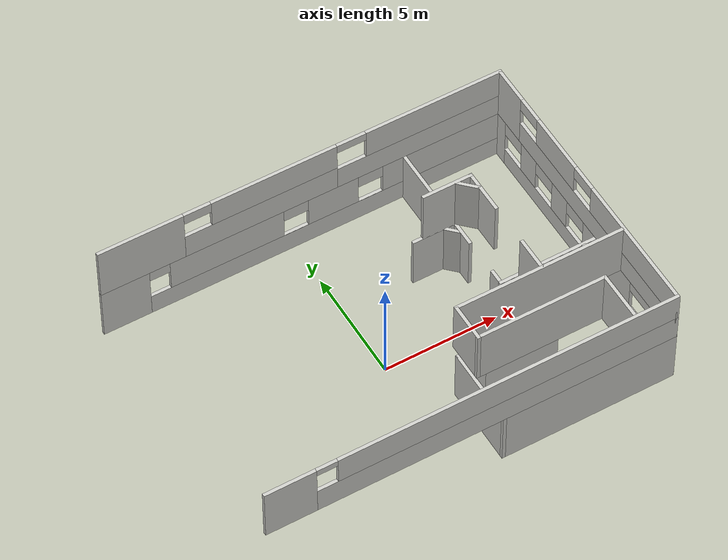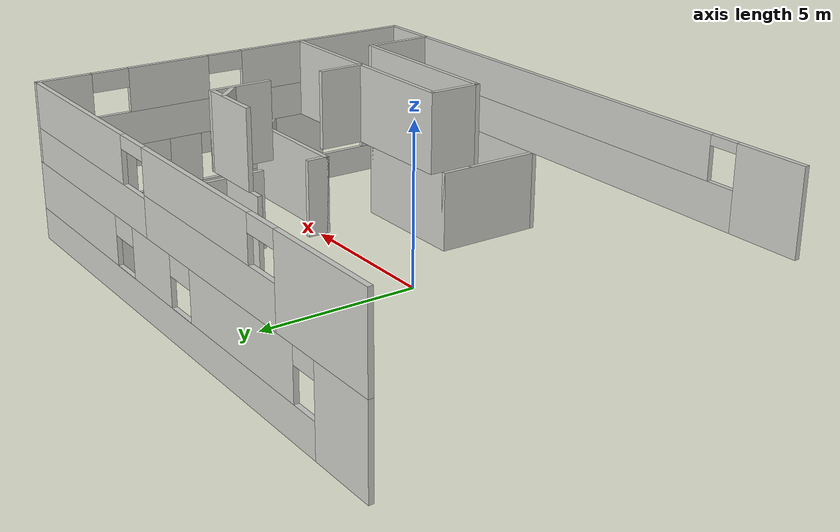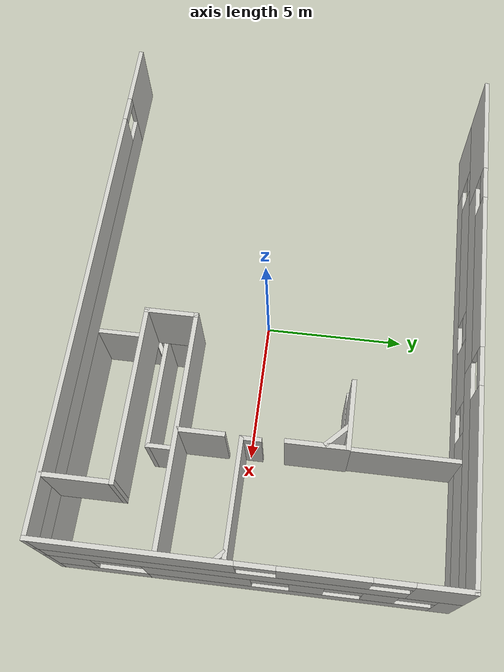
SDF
<sdf version="1.6">
 <model name="Indoor_Scenario1">
  <pose>0.463179 0.653592 0 0 -0 0</pose>
  <link name="Wall_19">
   <collision name="Wall_19_Collision">
    <geometry><box><size>0.75 0.15 2.5</size></box></geometry>
    <pose>0 0 1.25 0 -0 0</pose>
   </collision>
   <visual name="Wall_19_Visual">
    <pose>0 0 1.25 0 -0 0</pose>
    <geometry><box><size>0.75 0.15 2.5</size></box></geometry>
    <material>
     <script><uri>file://media/materials/scripts/gazebo.material</uri><name>Gazebo/CeilingTiled</name></script>
     <ambient>1 1 1 1</ambient>
    </material>
    <meta><layer>0</layer></meta>
   </visual>
   <pose>1.67467 -4.10793 0 0 -0 -2.61799</pose>
  </link>
  <link name="Wall_2">
   <pose>-0 6.425 0 0 -0 0</pose>
   <visual name="Wall_2_Visual_0">
    <pose>-7.94017 0 1.25 0 -0 0</pose>
    <geometry><box><size>2.11966 0.15 2.5</size></box></geometry>
    <material>
     <script><uri>file://media/materials/scripts/gazebo.material</uri><name>Gazebo/CeilingTiled</name></script>
     <ambient>0.647059 0.505882 0.309804 1</ambient>
    </material>
    <meta><layer>0</layer></meta>
   </visual>
   <collision name="Wall_2_Collision_0">
    <geometry><box><size>2.11966 0.15 2.5</size></box></geometry>
    <pose>-7.94017 0 1.25 0 -0 0</pose>
   </collision>
   <visual name="Wall_2_Visual_1">
    <pose>1.05983 0 0.5 0 -0 0</pose>
    <geometry><box><size>15.8803 0.15 1</size></box></geometry>
    <material>
     <script><uri>file://media/materials/scripts/gazebo.material</uri><name>Gazebo/CeilingTiled</name></script>
     <ambient>0.647059 0.505882 0.309804 1</ambient>
    </material>
    <meta><layer>0</layer></meta>
   </visual>
   <collision name="Wall_2_Collision_1">
    <geometry><box><size>15.8803 0.15 1</size></box></geometry>
    <pose>1.05983 0 0.5 0 -0 0</pose>
   </collision>
   <visual name="Wall_2_Visual_2">
    <pose>-3.45191 0 1.75 0 -0 0</pose>
    <geometry><box><size>5.05687 0.15 1.5</size></box></geometry>
    <material>
     <script><uri>file://media/materials/scripts/gazebo.material</uri><name>Gazebo/CeilingTiled</name></script>
     <ambient>0.647059 0.505882 0.309804 1</ambient>
    </material>
    <meta><layer>0</layer></meta>
   </visual>
   <collision name="Wall_2_Collision_2">
    <geometry><box><size>5.05687 0.15 1.5</size></box></geometry>
    <pose>-3.45191 0 1.75 0 -0 0</pose>
   </collision>
   <visual name="Wall_2_Visual_3">
    <pose>1.30899 0 1.75 0 -0 0</pose>
    <geometry><box><size>2.26492 0.15 1.5</size></box></geometry>
    <material>
     <script><uri>file://media/materials/scripts/gazebo.material</uri><name>Gazebo/CeilingTiled</name></script>
     <ambient>0.647059 0.505882 0.309804 1</ambient>
    </material>
    <meta><layer>0</layer></meta>
   </visual>
   <collision name="Wall_2_Collision_3">
    <geometry><box><size>2.26492 0.15 1.5</size></box></geometry>
    <pose>1.30899 0 1.75 0 -0 0</pose>
   </collision>
   <visual name="Wall_2_Visual_4">
    <pose>6.27072 0 1.75 0 -0 0</pose>
    <geometry><box><size>5.45855 0.15 1.5</size></box></geometry>
    <material>
     <script><uri>file://media/materials/scripts/gazebo.material</uri><name>Gazebo/CeilingTiled</name></script>
     <ambient>0.647059 0.505882 0.309804 1</ambient>
    </material>
    <meta><layer>0</layer></meta>
   </visual>
   <collision name="Wall_2_Collision_4">
    <geometry><box><size>5.45855 0.15 1.5</size></box></geometry>
    <pose>6.27072 0 1.75 0 -0 0</pose>
   </collision>
   <visual name="Wall_2_Visual_5">
    <pose>-0.373475 0 1 0 -0 0</pose>
    <geometry><box><size>1.1 0.15 0.01</size></box></geometry>
    <material>
     <script><uri>file://media/materials/scripts/gazebo.material</uri><name>Gazebo/CeilingTiled</name></script>
     <ambient>0.647059 0.505882 0.309804 1</ambient>
    </material>
    <meta><layer>0</layer></meta>
   </visual>
   <collision name="Wall_2_Collision_5">
    <geometry><box><size>1.1 0.15 0.01</size></box></geometry>
    <pose>-0.373475 0 1 0 -0 0</pose>
   </collision>
   <visual name="Wall_2_Visual_6">
    <pose>2.99145 0 1 0 -0 0</pose>
    <geometry><box><size>1.1 0.15 0.01</size></box></geometry>
    <material>
     <script><uri>file://media/materials/scripts/gazebo.material</uri><name>Gazebo/CeilingTiled</name></script>
     <ambient>0.647059 0.505882 0.309804 1</ambient>
    </material>
    <meta><layer>0</layer></meta>
   </visual>
   <collision name="Wall_2_Collision_6">
    <geometry><box><size>1.1 0.15 0.01</size></box></geometry>
    <pose>2.99145 0 1 0 -0 0</pose>
   </collision>
   <visual name="Wall_2_Visual_7">
    <pose>-0.373475 0 2.2 0 -0 0</pose>
    <geometry><box><size>1.1 0.15 0.6</size></box></geometry>
    <material>
     <script><uri>file://media/materials/scripts/gazebo.material</uri><name>Gazebo/CeilingTiled</name></script>
     <ambient>0.647059 0.505882 0.309804 1</ambient>
    </material>
    <meta><layer>0</layer></meta>
   </visual>
   <collision name="Wall_2_Collision_7">
    <geometry><box><size>1.1 0.15 0.6</size></box></geometry>
    <pose>-0.373475 0 2.2 0 -0 0</pose>
   </collision>
   <visual name="Wall_2_Visual_8">
    <pose>2.99145 0 2.2 0 -0 0</pose>
    <geometry><box><size>1.1 0.15 0.6</size></box></geometry>
    <material>
     <script><uri>file://media/materials/scripts/gazebo.material</uri><name>Gazebo/CeilingTiled</name></script>
     <ambient>0.647059 0.505882 0.309804 1</ambient>
    </material>
    <meta><layer>0</layer></meta>
   </visual>
   <collision name="Wall_2_Collision_8">
    <geometry><box><size>1.1 0.15 0.6</size></box></geometry>
    <pose>2.99145 0 2.2 0 -0 0</pose>
   </collision>
   <visual name="Wall_2_Visual_9">
    <pose>-6.43034 0 2.25 0 -0 0</pose>
    <geometry><box><size>0.9 0.15 0.5</size></box></geometry>
    <material>
     <script><uri>file://media/materials/scripts/gazebo.material</uri><name>Gazebo/CeilingTiled</name></script>
     <ambient>0.647059 0.505882 0.309804 1</ambient>
    </material>
    <meta><layer>0</layer></meta>
   </visual>
   <collision name="Wall_2_Collision_9">
    <geometry><box><size>0.9 0.15 0.5</size></box></geometry>
    <pose>-6.43034 0 2.25 0 -0 0</pose>
   </collision>
  </link>
  <link name="Wall_3">
   <pose>8.925 -0 0 0 -0 -1.5708</pose>
   <visual name="Wall_3_Visual_0">
    <pose>-6.13698 0 1.25 0 -0 0</pose>
    <geometry><box><size>0.726032 0.15 2.5</size></box></geometry>
    <material>
     <script><uri>file://media/materials/scripts/gazebo.material</uri><name>Gazebo/CeilingTiled</name></script>
     <ambient>0.647059 0.505882 0.309804 1</ambient>
    </material>
    <meta><layer>0</layer></meta>
   </visual>
   <collision name="Wall_3_Collision_0">
    <geometry><box><size>0.726032 0.15 2.5</size></box></geometry>
    <pose>-6.13698 0 1.25 0 -0 0</pose>
   </collision>
   <visual name="Wall_3_Visual_1">
    <pose>-1.17837 0 0.45 0 -0 0</pose>
    <geometry><box><size>9.1912 0.15 0.9</size></box></geometry>
    <material>
     <script><uri>file://media/materials/scripts/gazebo.material</uri><name>Gazebo/CeilingTiled</name></script>
     <ambient>0.647059 0.505882 0.309804 1</ambient>
    </material>
    <meta><layer>0</layer></meta>
   </visual>
   <collision name="Wall_3_Collision_1">
    <geometry><box><size>9.1912 0.15 0.9</size></box></geometry>
    <pose>-1.17837 0 0.45 0 -0 0</pose>
   </collision>
   <visual name="Wall_3_Visual_2">
    <pose>4.95862 0 0.45 0 -0 0</pose>
    <geometry><box><size>3.08277 0.15 0.9</size></box></geometry>
    <material>
     <script><uri>file://media/materials/scripts/gazebo.material</uri><name>Gazebo/CeilingTiled</name></script>
     <ambient>0.647059 0.505882 0.309804 1</ambient>
    </material>
    <meta><layer>0</layer></meta>
   </visual>
   <collision name="Wall_3_Collision_2">
    <geometry><box><size>3.08277 0.15 0.9</size></box></geometry>
    <pose>4.95862 0 0.45 0 -0 0</pose>
   </collision>
   <visual name="Wall_3_Visual_3">
    <pose>5.75862 0 1.7 0 -0 0</pose>
    <geometry><box><size>1.48277 0.15 1.6</size></box></geometry>
    <material>
     <script><uri>file://media/materials/scripts/gazebo.material</uri><name>Gazebo/CeilingTiled</name></script>
     <ambient>0.647059 0.505882 0.309804 1</ambient>
    </material>
    <meta><layer>0</layer></meta>
   </visual>
   <collision name="Wall_3_Collision_3">
    <geometry><box><size>1.48277 0.15 1.6</size></box></geometry>
    <pose>5.75862 0 1.7 0 -0 0</pose>
   </collision>
   <visual name="Wall_3_Visual_4">
    <pose>-4.02683 0 1.7 0 -0 0</pose>
    <geometry><box><size>1.09427 0.15 1.6</size></box></geometry>
    <material>
     <script><uri>file://media/materials/scripts/gazebo.material</uri><name>Gazebo/CeilingTiled</name></script>
     <ambient>0.647059 0.505882 0.309804 1</ambient>
    </material>
    <meta><layer>0</layer></meta>
   </visual>
   <collision name="Wall_3_Collision_4">
    <geometry><box><size>1.09427 0.15 1.6</size></box></geometry>
    <pose>-4.02683 0 1.7 0 -0 0</pose>
   </collision>
   <visual name="Wall_3_Visual_5">
    <pose>-1.73257 0 1.7 0 -0 0</pose>
    <geometry><box><size>1.09427 0.15 1.6</size></box></geometry>
    <material>
     <script><uri>file://media/materials/scripts/gazebo.material</uri><name>Gazebo/CeilingTiled</name></script>
     <ambient>0.647059 0.505882 0.309804 1</ambient>
    </material>
    <meta><layer>0</layer></meta>
   </visual>
   <collision name="Wall_3_Collision_5">
    <geometry><box><size>1.09427 0.15 1.6</size></box></geometry>
    <pose>-1.73257 0 1.7 0 -0 0</pose>
   </collision>
   <visual name="Wall_3_Visual_6">
    <pose>1.7159 0 1.7 0 -0 0</pose>
    <geometry><box><size>3.40267 0.15 1.6</size></box></geometry>
    <material>
     <script><uri>file://media/materials/scripts/gazebo.material</uri><name>Gazebo/CeilingTiled</name></script>
     <ambient>0.647059 0.505882 0.309804 1</ambient>
    </material>
    <meta><layer>0</layer></meta>
   </visual>
   <collision name="Wall_3_Collision_6">
    <geometry><box><size>3.40267 0.15 1.6</size></box></geometry>
    <pose>1.7159 0 1.7 0 -0 0</pose>
   </collision>
   <visual name="Wall_3_Visual_7">
    <pose>1.7159 0 1.7 0 -0 0</pose>
    <geometry><box><size>3.40267 0.15 1.6</size></box></geometry>
    <material>
     <script><uri>file://media/materials/scripts/gazebo.material</uri><name>Gazebo/CeilingTiled</name></script>
     <ambient>0.647059 0.505882 0.309804 1</ambient>
    </material>
    <meta><layer>0</layer></meta>
   </visual>
   <collision name="Wall_3_Collision_7">
    <geometry><box><size>3.40267 0.15 1.6</size></box></geometry>
    <pose>1.7159 0 1.7 0 -0 0</pose>
   </collision>
   <visual name="Wall_3_Visual_8">
    <pose>-5.17397 0 2.15 0 -0 0</pose>
    <geometry><box><size>1.2 0.15 0.7</size></box></geometry>
    <material>
     <script><uri>file://media/materials/scripts/gazebo.material</uri><name>Gazebo/CeilingTiled</name></script>
     <ambient>0.647059 0.505882 0.309804 1</ambient>
    </material>
    <meta><layer>0</layer></meta>
   </visual>
   <collision name="Wall_3_Collision_8">
    <geometry><box><size>1.2 0.15 0.7</size></box></geometry>
    <pose>-5.17397 0 2.15 0 -0 0</pose>
   </collision>
   <visual name="Wall_3_Visual_9">
    <pose>-2.8797 0 2.15 0 -0 0</pose>
    <geometry><box><size>1.2 0.15 0.7</size></box></geometry>
    <material>
     <script><uri>file://media/materials/scripts/gazebo.material</uri><name>Gazebo/CeilingTiled</name></script>
     <ambient>0.647059 0.505882 0.309804 1</ambient>
    </material>
    <meta><layer>0</layer></meta>
   </visual>
   <collision name="Wall_3_Collision_9">
    <geometry><box><size>1.2 0.15 0.7</size></box></geometry>
    <pose>-2.8797 0 2.15 0 -0 0</pose>
   </collision>
   <visual name="Wall_3_Visual_10">
    <pose>-0.585434 0 2.15 0 -0 0</pose>
    <geometry><box><size>1.2 0.15 0.7</size></box></geometry>
    <material>
     <script><uri>file://media/materials/scripts/gazebo.material</uri><name>Gazebo/CeilingTiled</name></script>
     <ambient>0.647059 0.505882 0.309804 1</ambient>
    </material>
    <meta><layer>0</layer></meta>
   </visual>
   <collision name="Wall_3_Collision_10">
    <geometry><box><size>1.2 0.15 0.7</size></box></geometry>
    <pose>-0.585434 0 2.15 0 -0 0</pose>
   </collision>
   <visual name="Wall_3_Visual_11">
    <pose>4.21723 0 2.25 0 -0 0</pose>
    <geometry><box><size>1.6 0.15 0.5</size></box></geometry>
    <material>
     <script><uri>file://media/materials/scripts/gazebo.material</uri><name>Gazebo/CeilingTiled</name></script>
     <ambient>0.647059 0.505882 0.309804 1</ambient>
    </material>
    <meta><layer>0</layer></meta>
   </visual>
   <collision name="Wall_3_Collision_11">
    <geometry><box><size>1.6 0.15 0.5</size></box></geometry>
    <pose>4.21723 0 2.25 0 -0 0</pose>
   </collision>
   <visual name="Wall_3_Visual_12">
    <pose>4.21723 0 2.25 0 -0 0</pose>
    <geometry><box><size>1.6 0.15 0.5</size></box></geometry>
    <material>
     <script><uri>file://media/materials/scripts/gazebo.material</uri><name>Gazebo/CeilingTiled</name></script>
     <ambient>0.647059 0.505882 0.309804 1</ambient>
    </material>
    <meta><layer>0</layer></meta>
   </visual>
   <collision name="Wall_3_Collision_12">
    <geometry><box><size>1.6 0.15 0.5</size></box></geometry>
    <pose>4.21723 0 2.25 0 -0 0</pose>
   </collision>
  </link>
  <link name="Wall_37">
   <collision name="Wall_37_Collision">
    <geometry><box><size>4 0.15 2.5</size></box></geometry>
    <pose>0 0 1.25 0 -0 0</pose>
   </collision>
   <visual name="Wall_37_Visual">
    <pose>0 0 1.25 0 -0 0</pose>
    <geometry><box><size>4 0.15 2.5</size></box></geometry>
    <material>
     <script><uri>file://media/materials/scripts/gazebo.material</uri><name>Gazebo/CeilingTiled</name></script>
     <ambient>1 1 1 1</ambient>
    </material>
    <meta><layer>0</layer></meta>
   </visual>
   <pose>4.54502 4.4469 0 0 -0 -1.5708</pose>
  </link>
  <link name="Wall_38">
   <collision name="Wall_38_Collision">
    <geometry><box><size>2 0.15 2.5</size></box></geometry>
    <pose>0 0 1.25 0 -0 0</pose>
   </collision>
   <visual name="Wall_38_Visual">
    <pose>0 0 1.25 0 -0 0</pose>
    <geometry><box><size>2 0.15 2.5</size></box></geometry>
    <material>
     <script><uri>file://media/materials/scripts/gazebo.material</uri><name>Gazebo/CeilingTiled</name></script>
     <ambient>1 1 1 1</ambient>
    </material>
    <meta><layer>0</layer></meta>
   </visual>
   <pose>3.62002 2.50441 0 0 -0 3.14159</pose>
  </link>
  <link name="Wall_4">
   <collision name="Wall_4_Collision">
    <geometry><box><size>7.75 0.15 2.5</size></box></geometry>
    <pose>0 0 1.25 0 -0 0</pose>
   </collision>
   <visual name="Wall_4_Visual">
    <pose>0 0 1.25 0 -0 0</pose>
    <geometry><box><size>7.75 0.15 2.5</size></box></geometry>
    <material>
     <script><uri>file://media/materials/scripts/gazebo.material</uri><name>Gazebo/CeilingTiled</name></script>
     <ambient>0.647059 0.505882 0.309804 1</ambient>
    </material>
    <meta><layer>0</layer></meta>
   </visual>
   <pose>5.125 -6.425 0 0 -0 3.14159</pose>
  </link>
  <link name="Wall_40">
   <collision name="Wall_40_Collision">
    <geometry><box><size>1.25 0.15 2.5</size></box></geometry>
    <pose>0 0 1.25 0 -0 0</pose>
   </collision>
   <visual name="Wall_40_Visual">
    <pose>0 0 1.25 0 -0 0</pose>
    <geometry><box><size>1.25 0.15 2.5</size></box></geometry>
    <material>
     <script><uri>file://media/materials/scripts/gazebo.material</uri><name>Gazebo/CeilingTiled</name></script>
     <ambient>1 1 1 1</ambient>
    </material>
    <meta><layer>0</layer></meta>
   </visual>
   <pose>4.54502 1.95441 0 0 -0 -1.5708</pose>
  </link>
  <link name="Wall_42">
   <collision name="Wall_42_Collision">
    <geometry><box><size>4.5 0.15 2.5</size></box></geometry>
    <pose>0 0 1.25 0 -0 0</pose>
   </collision>
   <visual name="Wall_42_Visual">
    <pose>0 0 1.25 0 -0 0</pose>
    <geometry><box><size>4.5 0.15 2.5</size></box></geometry>
    <material>
     <script><uri>file://media/materials/scripts/gazebo.material</uri><name>Gazebo/CeilingTiled</name></script>
     <ambient>1 1 1 1</ambient>
    </material>
    <meta><layer>0</layer></meta>
   </visual>
   <pose>6.74627 -0.890762 0 0 -0 3.14159</pose>
  </link>
  <link name="Wall_43">
   <collision name="Wall_43_Collision">
    <geometry><box><size>0.75 0.15 2.5</size></box></geometry>
    <pose>0 0 1.25 0 -0 0</pose>
   </collision>
   <visual name="Wall_43_Visual">
    <pose>0 0 1.25 0 -0 0</pose>
    <geometry><box><size>0.75 0.15 2.5</size></box></geometry>
    <material>
     <script><uri>file://media/materials/scripts/gazebo.material</uri><name>Gazebo/CeilingTiled</name></script>
     <ambient>1 1 1 1</ambient>
    </material>
    <meta><layer>0</layer></meta>
   </visual>
   <pose>4.57127 -0.590762 0 0 -0 1.5708</pose>
  </link>
  <link name="Wall_46">
   <collision name="Wall_46_Collision">
    <geometry><box><size>1 0.15 2.5</size></box></geometry>
    <pose>0 0 1.25 0 -0 0</pose>
   </collision>
   <visual name="Wall_46_Visual">
    <pose>0 0 1.25 0 -0 0</pose>
    <geometry><box><size>1 0.15 2.5</size></box></geometry>
    <material>
     <script><uri>file://media/materials/scripts/gazebo.material</uri><name>Gazebo/CeilingTiled</name></script>
     <ambient>1 1 1 1</ambient>
    </material>
    <meta><layer>0</layer></meta>
   </visual>
   <pose>8.59215 -1.24375 0 0 -0 -0.785398</pose>
  </link>
  <link name="Wall_48">
   <collision name="Wall_48_Collision">
    <geometry><box><size>0.75 0.15 2.5</size></box></geometry>
    <pose>0 0 1.25 0 -0 0</pose>
   </collision>
   <visual name="Wall_48_Visual">
    <pose>0 0 1.25 0 -0 0</pose>
    <geometry><box><size>0.75 0.15 2.5</size></box></geometry>
    <material>
     <script><uri>file://media/materials/scripts/gazebo.material</uri><name>Gazebo/CeilingTiled</name></script>
     <ambient>1 1 1 1</ambient>
    </material>
    <meta><layer>0</layer></meta>
   </visual>
   <pose>4.28416 2.24221 0 0 -0 2.35619</pose>
  </link>
  <link name="Wall_5">
   <collision name="Wall_5_Collision">
    <geometry><box><size>3.5 0.15 2.5</size></box></geometry>
    <pose>0 0 1.25 0 -0 0</pose>
   </collision>
   <visual name="Wall_5_Visual">
    <pose>0 0 1.25 0 -0 0</pose>
    <geometry><box><size>3.5 0.15 2.5</size></box></geometry>
    <material>
     <script><uri>file://media/materials/scripts/gazebo.material</uri><name>Gazebo/CeilingTiled</name></script>
     <ambient>0.647059 0.505882 0.309804 1</ambient>
    </material>
    <meta><layer>0</layer></meta>
   </visual>
   <pose>1.325 -4.75 0 0 -0 1.5708</pose>
  </link>
  <link name="Wall_56">
   <pose>-0 6.425 2.5 0 -0 0</pose>
   <visual name="Wall_56_Visual_0">
    <pose>-7.13278 0 1.25 0 -0 0</pose>
    <geometry><box><size>3.73445 0.15 2.5</size></box></geometry>
    <material>
     <script><uri>file://media/materials/scripts/gazebo.material</uri><name>Gazebo/CeilingTiled</name></script>
     <ambient>0.647059 0.505882 0.305882 1</ambient>
    </material>
    <meta><layer>1</layer></meta>
   </visual>
   <collision name="Wall_56_Collision_0">
    <geometry><box><size>3.73445 0.15 2.5</size></box></geometry>
    <pose>-7.13278 0 1.25 0 -0 0</pose>
   </collision>
   <visual name="Wall_56_Visual_1">
    <pose>-1.88131 0 0.6 0 -0 0</pose>
    <geometry><box><size>6.7685 0.15 1.2</size></box></geometry>
    <material>
     <script><uri>file://media/materials/scripts/gazebo.material</uri><name>Gazebo/CeilingTiled</name></script>
     <ambient>0.647059 0.505882 0.305882 1</ambient>
    </material>
    <meta><layer>1</layer></meta>
   </visual>
   <collision name="Wall_56_Collision_1">
    <geometry><box><size>6.7685 0.15 1.2</size></box></geometry>
    <pose>-1.88131 0 0.6 0 -0 0</pose>
   </collision>
   <visual name="Wall_56_Visual_2">
    <pose>5.25147 0 0.55 0 -0 0</pose>
    <geometry><box><size>7.49705 0.15 1.1</size></box></geometry>
    <material>
     <script><uri>file://media/materials/scripts/gazebo.material</uri><name>Gazebo/CeilingTiled</name></script>
     <ambient>0.647059 0.505882 0.305882 1</ambient>
    </material>
    <meta><layer>1</layer></meta>
   </visual>
   <collision name="Wall_56_Collision_2">
    <geometry><box><size>7.49705 0.15 1.1</size></box></geometry>
    <pose>5.25147 0 0.55 0 -0 0</pose>
   </collision>
   <visual name="Wall_56_Visual_3">
    <pose>5.90147 0 1.8 0 -0 0</pose>
    <geometry><box><size>6.19705 0.15 1.4</size></box></geometry>
    <material>
     <script><uri>file://media/materials/scripts/gazebo.material</uri><name>Gazebo/CeilingTiled</name></script>
     <ambient>0.647059 0.505882 0.305882 1</ambient>
    </material>
    <meta><layer>1</layer></meta>
   </visual>
   <collision name="Wall_56_Collision_3">
    <geometry><box><size>6.19705 0.15 1.4</size></box></geometry>
    <pose>5.90147 0 1.8 0 -0 0</pose>
   </collision>
   <visual name="Wall_56_Visual_4">
    <pose>-1.2813 0 1.85 0 -0 0</pose>
    <geometry><box><size>5.5685 0.15 1.3</size></box></geometry>
    <material>
     <script><uri>file://media/materials/scripts/gazebo.material</uri><name>Gazebo/CeilingTiled</name></script>
     <ambient>0.647059 0.505882 0.305882 1</ambient>
    </material>
    <meta><layer>1</layer></meta>
   </visual>
   <collision name="Wall_56_Collision_4">
    <geometry><box><size>5.5685 0.15 1.3</size></box></geometry>
    <pose>-1.2813 0 1.85 0 -0 0</pose>
   </collision>
   <visual name="Wall_56_Visual_5">
    <pose>-4.66556 0 2.25 0 -0 0</pose>
    <geometry><box><size>1.2 0.15 0.5</size></box></geometry>
    <material>
     <script><uri>file://media/materials/scripts/gazebo.material</uri><name>Gazebo/CeilingTiled</name></script>
     <ambient>0.647059 0.505882 0.305882 1</ambient>
    </material>
    <meta><layer>1</layer></meta>
   </visual>
   <collision name="Wall_56_Collision_5">
    <geometry><box><size>1.2 0.15 0.5</size></box></geometry>
    <pose>-4.66556 0 2.25 0 -0 0</pose>
   </collision>
   <visual name="Wall_56_Visual_6">
    <pose>2.15295 0 2.3 0 -0 0</pose>
    <geometry><box><size>1.3 0.15 0.4</size></box></geometry>
    <material>
     <script><uri>file://media/materials/scripts/gazebo.material</uri><name>Gazebo/CeilingTiled</name></script>
     <ambient>0.647059 0.505882 0.305882 1</ambient>
    </material>
    <meta><layer>1</layer></meta>
   </visual>
   <collision name="Wall_56_Collision_6">
    <geometry><box><size>1.3 0.15 0.4</size></box></geometry>
    <pose>2.15295 0 2.3 0 -0 0</pose>
   </collision>
  </link>
  <link name="Wall_57">
   <pose>8.925 -0 2.5 0 -0 -1.5708</pose>
   <visual name="Wall_57_Visual_0">
    <pose>-5.62101 0 1.25 0 -0 0</pose>
    <geometry><box><size>1.75799 0.15 2.5</size></box></geometry>
    <material>
     <script><uri>file://media/materials/scripts/gazebo.material</uri><name>Gazebo/CeilingTiled</name></script>
     <ambient>0.647059 0.505882 0.305882 1</ambient>
    </material>
    <meta><layer>1</layer></meta>
   </visual>
   <collision name="Wall_57_Collision_0">
    <geometry><box><size>1.75799 0.15 2.5</size></box></geometry>
    <pose>-5.62101 0 1.25 0 -0 0</pose>
   </collision>
   <visual name="Wall_57_Visual_1">
    <pose>0.878995 0 0.55 0 -0 0</pose>
    <geometry><box><size>11.242 0.15 1.1</size></box></geometry>
    <material>
     <script><uri>file://media/materials/scripts/gazebo.material</uri><name>Gazebo/CeilingTiled</name></script>
     <ambient>0.647059 0.505882 0.305882 1</ambient>
    </material>
    <meta><layer>1</layer></meta>
   </visual>
   <collision name="Wall_57_Collision_1">
    <geometry><box><size>11.242 0.15 1.1</size></box></geometry>
    <pose>0.878995 0 0.55 0 -0 0</pose>
   </collision>
   <visual name="Wall_57_Visual_2">
    <pose>-2.17088 0 1.8 0 -0 0</pose>
    <geometry><box><size>2.74226 0.15 1.4</size></box></geometry>
    <material>
     <script><uri>file://media/materials/scripts/gazebo.material</uri><name>Gazebo/CeilingTiled</name></script>
     <ambient>0.647059 0.505882 0.305882 1</ambient>
    </material>
    <meta><layer>1</layer></meta>
   </visual>
   <collision name="Wall_57_Collision_2">
    <geometry><box><size>2.74226 0.15 1.4</size></box></geometry>
    <pose>-2.17088 0 1.8 0 -0 0</pose>
   </collision>
   <visual name="Wall_57_Visual_3">
    <pose>3.45012 0 1.8 0 -0 0</pose>
    <geometry><box><size>6.09975 0.15 1.4</size></box></geometry>
    <material>
     <script><uri>file://media/materials/scripts/gazebo.material</uri><name>Gazebo/CeilingTiled</name></script>
     <ambient>0.647059 0.505882 0.305882 1</ambient>
    </material>
    <meta><layer>1</layer></meta>
   </visual>
   <collision name="Wall_57_Collision_3">
    <geometry><box><size>6.09975 0.15 1.4</size></box></geometry>
    <pose>3.45012 0 1.8 0 -0 0</pose>
   </collision>
   <visual name="Wall_57_Visual_4">
    <pose>-4.14201 0 2.2 0 -0 0</pose>
    <geometry><box><size>1.2 0.15 0.6</size></box></geometry>
    <material>
     <script><uri>file://media/materials/scripts/gazebo.material</uri><name>Gazebo/CeilingTiled</name></script>
     <ambient>0.647059 0.505882 0.305882 1</ambient>
    </material>
    <meta><layer>1</layer></meta>
   </visual>
   <collision name="Wall_57_Collision_4">
    <geometry><box><size>1.2 0.15 0.6</size></box></geometry>
    <pose>-4.14201 0 2.2 0 -0 0</pose>
   </collision>
   <visual name="Wall_57_Visual_5">
    <pose>-0.199749 0 2.2 0 -0 0</pose>
    <geometry><box><size>1.2 0.15 0.6</size></box></geometry>
    <material>
     <script><uri>file://media/materials/scripts/gazebo.material</uri><name>Gazebo/CeilingTiled</name></script>
     <ambient>0.647059 0.505882 0.305882 1</ambient>
    </material>
    <meta><layer>1</layer></meta>
   </visual>
   <collision name="Wall_57_Collision_5">
    <geometry><box><size>1.2 0.15 0.6</size></box></geometry>
    <pose>-0.199749 0 2.2 0 -0 0</pose>
   </collision>
  </link>
  <link name="Wall_6">
   <collision name="Wall_6_Collision">
    <geometry><box><size>4 0.15 2.5</size></box></geometry>
    <pose>0 0 1.25 0 -0 0</pose>
   </collision>
   <visual name="Wall_6_Visual">
    <pose>0 0 1.25 0 -0 0</pose>
    <geometry><box><size>4 0.15 2.5</size></box></geometry>
    <material>
     <script><uri>file://media/materials/scripts/gazebo.material</uri><name>Gazebo/CeilingTiled</name></script>
     <ambient>1 1 1 1</ambient>
    </material>
    <meta><layer>0</layer></meta>
   </visual>
   <pose>3.25 -3.075 0 0 -0 0</pose>
  </link>
  <link name="Wall_7">
   <collision name="Wall_7_Collision">
    <geometry><box><size>1 0.15 2.5</size></box></geometry>
    <pose>0 0 1.25 0 -0 0</pose>
   </collision>
   <visual name="Wall_7_Visual">
    <pose>0 0 1.25 0 -0 0</pose>
    <geometry><box><size>1 0.15 2.5</size></box></geometry>
    <material>
     <script><uri>file://media/materials/scripts/gazebo.material</uri><name>Gazebo/CeilingTiled</name></script>
     <ambient>1 1 1 1</ambient>
    </material>
    <meta><layer>0</layer></meta>
   </visual>
   <pose>5.175 -3.5 0 0 -0 -1.5708</pose>
  </link>
  <link name="Wall_8">
   <collision name="Wall_8_Collision">
    <geometry><box><size>4 0.15 2.5</size></box></geometry>
    <pose>0 0 1.25 0 -0 0</pose>
   </collision>
   <visual name="Wall_8_Visual">
    <pose>0 0 1.25 0 -0 0</pose>
    <geometry><box><size>4 0.15 2.5</size></box></geometry>
    <material>
     <script><uri>file://media/materials/scripts/gazebo.material</uri><name>Gazebo/CeilingTiled</name></script>
     <ambient>1 1 1 1</ambient>
    </material>
    <meta><layer>0</layer></meta>
   </visual>
   <pose>3.25 -3.925 0 0 -0 3.14159</pose>
  </link>
  <link name="Wall_82">
   <pose>-0 -6.425 2.5 0 -0 0</pose>
   <visual name="Wall_82_Visual_0">
    <pose>-7.89428 0 1.25 0 -0 0</pose>
    <geometry><box><size>2.21143 0.15 2.5</size></box></geometry>
    <material>
     <script><uri>file://media/materials/scripts/gazebo.material</uri><name>Gazebo/CeilingTiled</name></script>
     <ambient>0.647059 0.505882 0.305882 1</ambient>
    </material>
    <meta><layer>1</layer></meta>
   </visual>
   <collision name="Wall_82_Collision_0">
    <geometry><box><size>2.21143 0.15 2.5</size></box></geometry>
    <pose>-7.89428 0 1.25 0 -0 0</pose>
   </collision>
   <visual name="Wall_82_Visual_1">
    <pose>1.10572 0 0.6 0 -0 0</pose>
    <geometry><box><size>15.7886 0.15 1.2</size></box></geometry>
    <material>
     <script><uri>file://media/materials/scripts/gazebo.material</uri><name>Gazebo/CeilingTiled</name></script>
     <ambient>0.647059 0.505882 0.305882 1</ambient>
    </material>
    <meta><layer>1</layer></meta>
   </visual>
   <collision name="Wall_82_Collision_1">
    <geometry><box><size>15.7886 0.15 1.2</size></box></geometry>
    <pose>1.10572 0 0.6 0 -0 0</pose>
   </collision>
   <visual name="Wall_82_Visual_2">
    <pose>1.55571 0 1.85 0 -0 0</pose>
    <geometry><box><size>14.8886 0.15 1.3</size></box></geometry>
    <material>
     <script><uri>file://media/materials/scripts/gazebo.material</uri><name>Gazebo/CeilingTiled</name></script>
     <ambient>0.647059 0.505882 0.305882 1</ambient>
    </material>
    <meta><layer>1</layer></meta>
   </visual>
   <collision name="Wall_82_Collision_2">
    <geometry><box><size>14.8886 0.15 1.3</size></box></geometry>
    <pose>1.55571 0 1.85 0 -0 0</pose>
   </collision>
   <visual name="Wall_82_Visual_3">
    <pose>-6.33857 0 2.35 0 -0 0</pose>
    <geometry><box><size>0.9 0.15 0.3</size></box></geometry>
    <material>
     <script><uri>file://media/materials/scripts/gazebo.material</uri><name>Gazebo/CeilingTiled</name></script>
     <ambient>0.647059 0.505882 0.305882 1</ambient>
    </material>
    <meta><layer>1</layer></meta>
   </visual>
   <collision name="Wall_82_Collision_3">
    <geometry><box><size>0.9 0.15 0.3</size></box></geometry>
    <pose>-6.33857 0 2.35 0 -0 0</pose>
   </collision>
  </link>
  <link name="Wall_84">
   <collision name="Wall_84_Collision">
    <geometry><box><size>2.25 0.15 2.5</size></box></geometry>
    <pose>0 0 1.25 0 -0 0</pose>
   </collision>
   <visual name="Wall_84_Visual">
    <pose>0 0 1.25 0 -0 0</pose>
    <geometry><box><size>2.25 0.15 2.5</size></box></geometry>
    <material>
     <script><uri>file://media/materials/scripts/gazebo.material</uri><name>Gazebo/CeilingTiled</name></script>
     <ambient>1 1 1 1</ambient>
    </material>
    <meta><layer>1</layer></meta>
   </visual>
   <pose>7.06066 -5.30727 2.5 0 -0 1.5708</pose>
  </link>
  <link name="Wall_85">
   <collision name="Wall_85_Collision">
    <geometry><box><size>5.75 0.15 2.5</size></box></geometry>
    <pose>0 0 1.25 0 -0 0</pose>
   </collision>
   <visual name="Wall_85_Visual">
    <pose>0 0 1.25 0 -0 0</pose>
    <geometry><box><size>5.75 0.15 2.5</size></box></geometry>
    <material>
     <script><uri>file://media/materials/scripts/gazebo.material</uri><name>Gazebo/CeilingTiled</name></script>
     <ambient>1 1 1 1</ambient>
    </material>
    <meta><layer>1</layer></meta>
   </visual>
   <pose>4.26066 -4.25727 2.5 0 -0 3.14159</pose>
  </link>
  <link name="Wall_86">
   <collision name="Wall_86_Collision">
    <geometry><box><size>1.75 0.15 2.5</size></box></geometry>
    <pose>0 0 1.25 0 -0 0</pose>
   </collision>
   <visual name="Wall_86_Visual">
    <pose>0 0 1.25 0 -0 0</pose>
    <geometry><box><size>1.75 0.15 2.5</size></box></geometry>
    <material>
     <script><uri>file://media/materials/scripts/gazebo.material</uri><name>Gazebo/CeilingTiled</name></script>
     <ambient>1 1 1 1</ambient>
    </material>
    <meta><layer>1</layer></meta>
   </visual>
   <pose>1.46066 -3.45728 2.5 0 -0 1.5708</pose>
  </link>
  <link name="Wall_87">
   <collision name="Wall_87_Collision">
    <geometry><box><size>7.5 0.15 2.5</size></box></geometry>
    <pose>0 0 1.25 0 -0 0</pose>
   </collision>
   <visual name="Wall_87_Visual">
    <pose>0 0 1.25 0 -0 0</pose>
    <geometry><box><size>7.5 0.15 2.5</size></box></geometry>
    <material>
     <script><uri>file://media/materials/scripts/gazebo.material</uri><name>Gazebo/CeilingTiled</name></script>
     <ambient>1 1 1 1</ambient>
    </material>
    <meta><layer>1</layer></meta>
   </visual>
   <pose>5.13566 -2.65727 2.5 0 -0 0</pose>
  </link>
  <link name="Wall_91">
   <collision name="Wall_91_Collision">
    <geometry><box><size>1.5 0.15 2.5</size></box></geometry>
    <pose>0 0 1.25 0 -0 0</pose>
   </collision>
   <visual name="Wall_91_Visual">
    <pose>0 0 1.25 0 -0 0</pose>
    <geometry><box><size>1.5 0.15 2.5</size></box></geometry>
    <material>
     <script><uri>file://media/materials/scripts/gazebo.material</uri><name>Gazebo/CeilingTiled</name></script>
     <ambient>1 1 1 1</ambient>
    </material>
    <meta><layer>1</layer></meta>
   </visual>
   <pose>5.25044 -1.92104 2.5 0 -0 1.5708</pose>
  </link>
  <link name="Wall_93">
   <collision name="Wall_93_Collision">
    <geometry><box><size>2.25 0.15 2.5</size></box></geometry>
    <pose>0 0 1.25 0 -0 0</pose>
   </collision>
   <visual name="Wall_93_Visual">
    <pose>0 0 1.25 0 -0 0</pose>
    <geometry><box><size>2.25 0.15 2.5</size></box></geometry>
    <material>
     <script><uri>file://media/materials/scripts/gazebo.material</uri><name>Gazebo/CeilingTiled</name></script>
     <ambient>1 1 1 1</ambient>
    </material>
    <meta><layer>1</layer></meta>
   </visual>
   <pose>4.18851 2.53292 2.5 0 -0 0</pose>
  </link>
  <link name="Wall_94">
   <collision name="Wall_94_Collision">
    <geometry><box><size>2 0.15 2.5</size></box></geometry>
    <pose>0 0 1.25 0 -0 0</pose>
   </collision>
   <visual name="Wall_94_Visual">
    <pose>0 0 1.25 0 -0 0</pose>
    <geometry><box><size>2 0.15 2.5</size></box></geometry>
    <material>
     <script><uri>file://media/materials/scripts/gazebo.material</uri><name>Gazebo/CeilingTiled</name></script>
     <ambient>1 1 1 1</ambient>
    </material>
    <meta><layer>1</layer></meta>
   </visual>
   <pose>5.23851 1.60792 2.5 0 -0 -1.5708</pose>
  </link>
  <link name="Wall_96">
   <collision name="Wall_96_Collision">
    <geometry><box><size>1 0.15 2.5</size></box></geometry>
    <pose>0 0 1.25 0 -0 0</pose>
   </collision>
   <visual name="Wall_96_Visual">
    <pose>0 0 1.25 0 -0 0</pose>
    <geometry><box><size>1 0.15 2.5</size></box></geometry>
    <material>
     <script><uri>file://media/materials/scripts/gazebo.material</uri><name>Gazebo/CeilingTiled</name></script>
     <ambient>1 1 1 1</ambient>
    </material>
    <meta><layer>1</layer></meta>
   </visual>
   <pose>4.88721 2.17206 2.5 0 -0 -0.785398</pose>
  </link>
  <static>1</static>
 </model>
</sdf>
